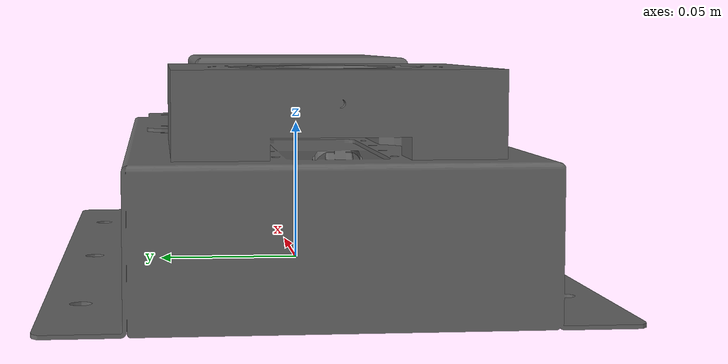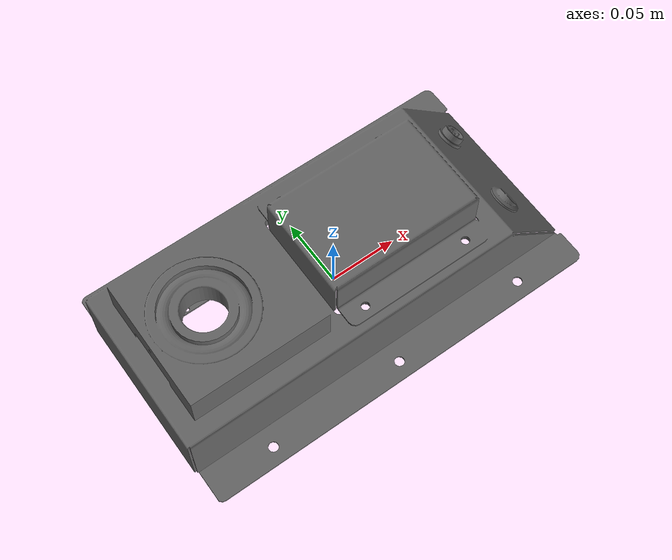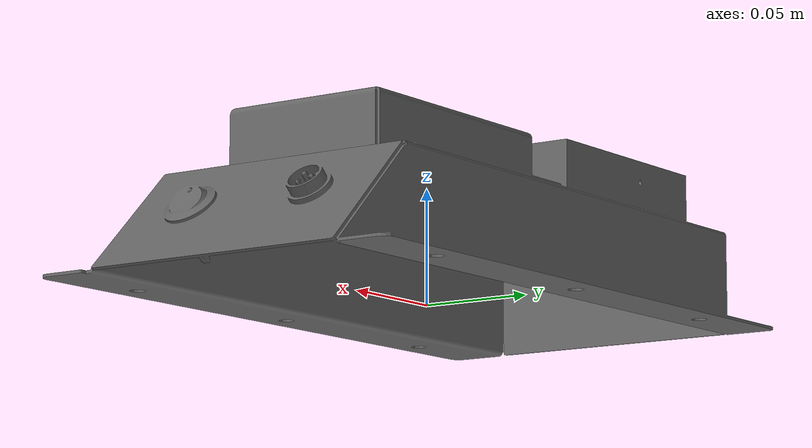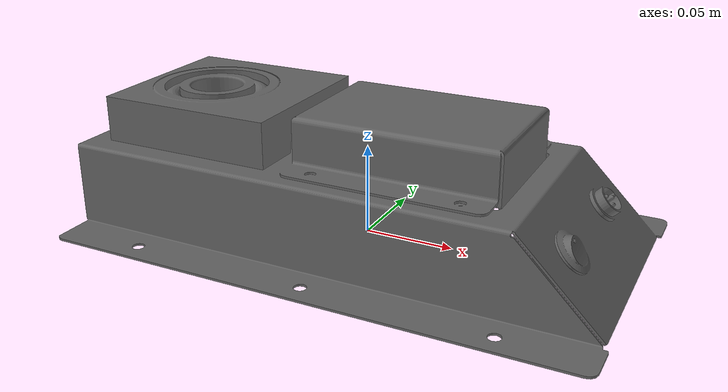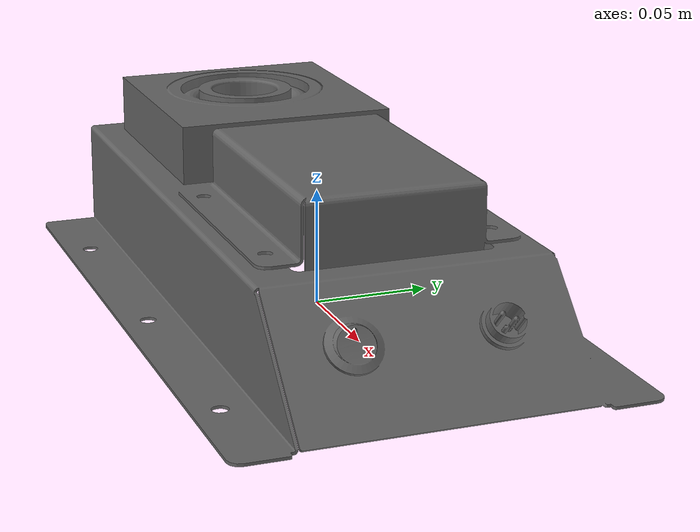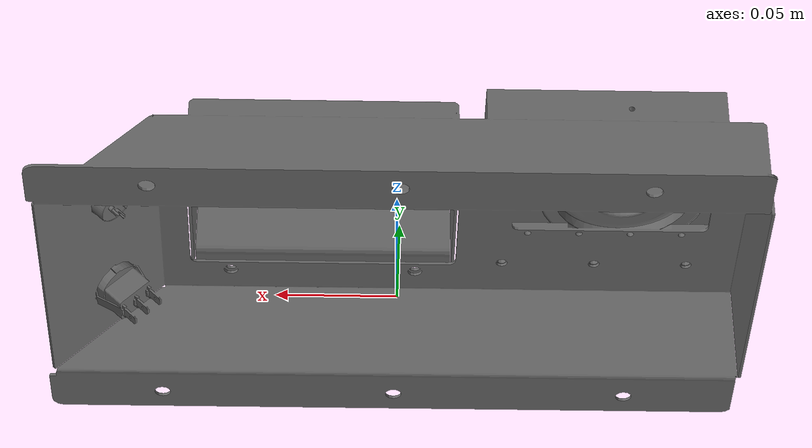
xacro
<robot name="Arm_base_link"><link name="Arm_base_link">
    <inertial>
      <origin rpy="0 0 0" xyz="-0.0168723530982394 -5.23224904403848E-05 0.038112696778507" />
      <mass value="1.08982930885161" />
      <inertia ixx="0.00311458437968986" ixy="-7.0610782277189E-06" ixz="-0.000262941654993437" iyy="0.00855106134499406" iyz="1.00391927392762E-06" izz="0.0104177337437887" />
    </inertial>
    <visual>
      <origin rpy="0 0 0" xyz="0 0 0" />
      <geometry>
        <mesh filename="package://robotican_description/komodo/meshes/Arm_base_link.STL" />
      </geometry>
      <material name="">
        <color rgba="0.4 0.4 0.4 1" />
      </material>
    </visual>
    <collision>
      <origin rpy="0 0 0" xyz="0 0 0" />
      <geometry>
        <mesh filename="package://robotican_description/komodo/meshes/Arm_base_link.STL" />
      </geometry>
    </collision>
  </link>
  </robot>
